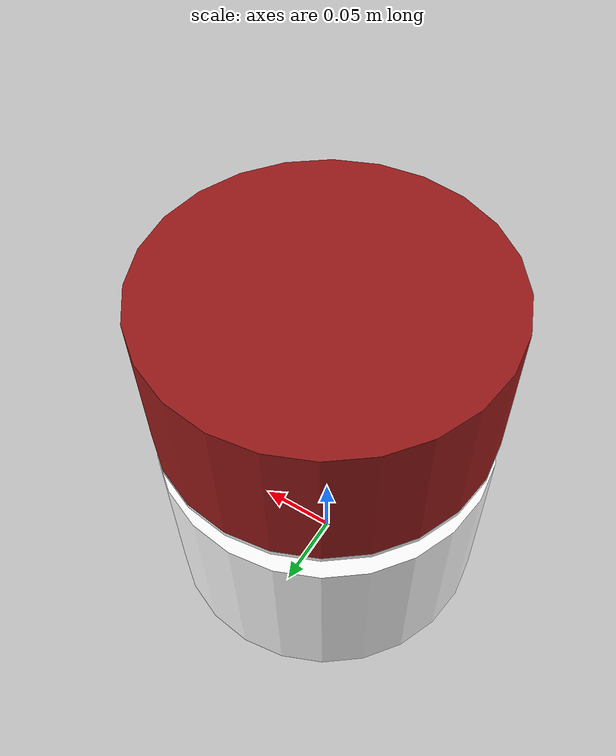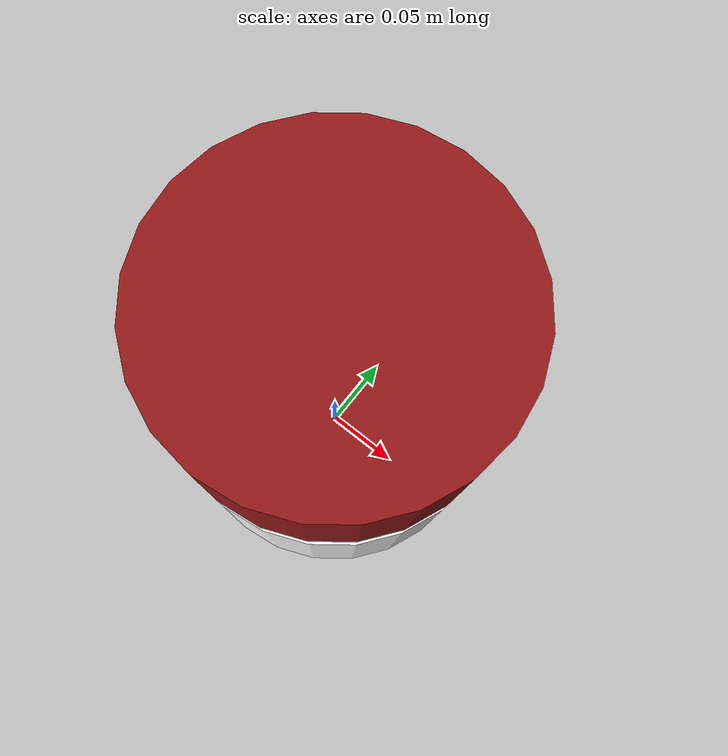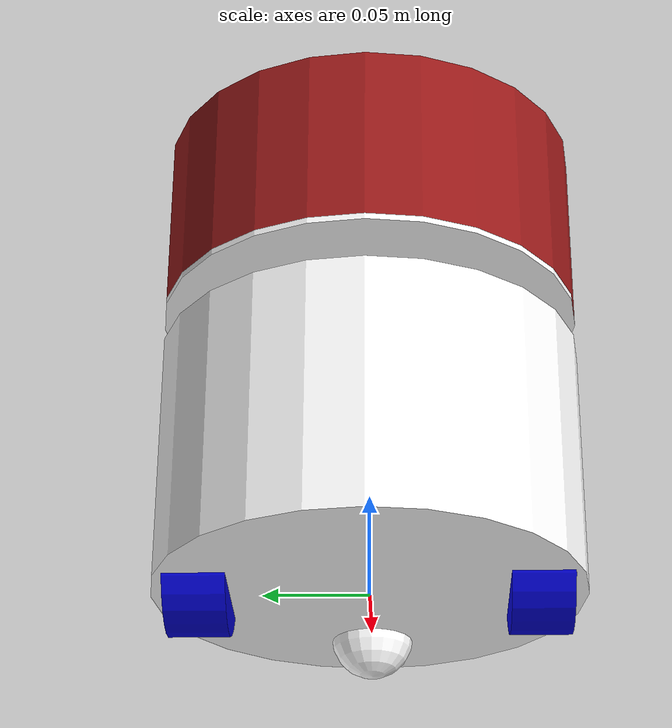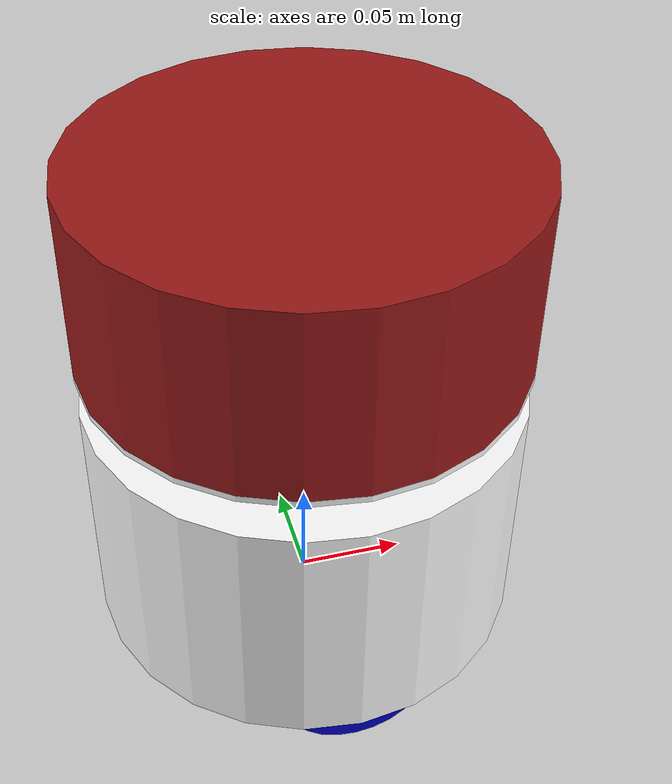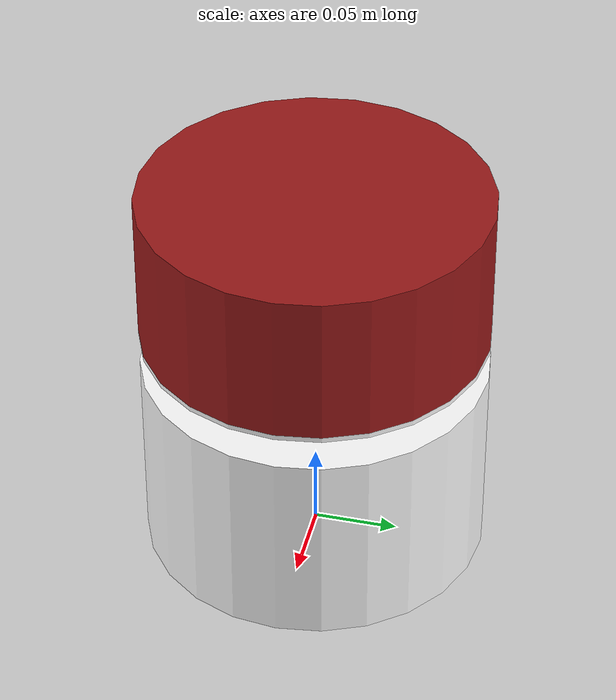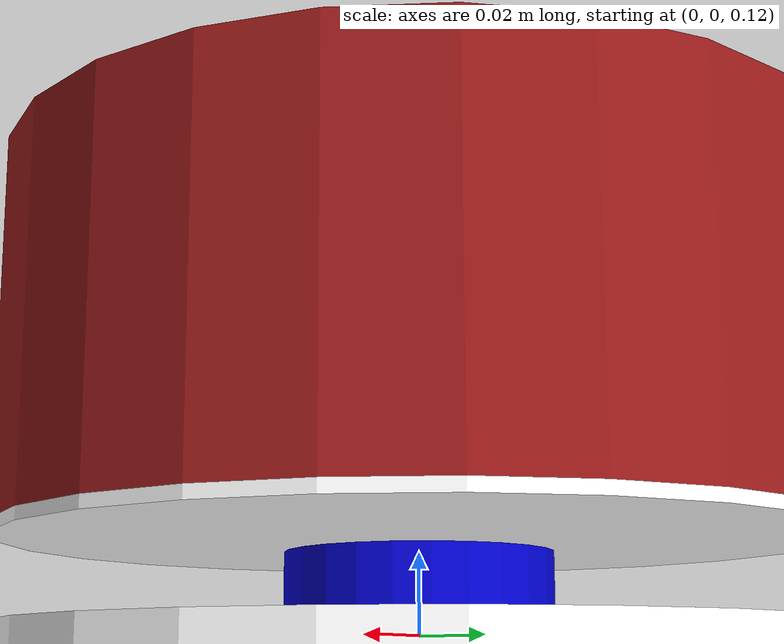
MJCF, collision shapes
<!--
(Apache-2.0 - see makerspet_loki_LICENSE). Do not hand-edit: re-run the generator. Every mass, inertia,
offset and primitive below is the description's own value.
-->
<mujoco model="makerspet_loki">
  <compiler angle="radian" meshdir="meshes" autolimits="true"/>

  <default>
    <default class="makerspet_loki">
      <default class="visual">
        <geom contype="0" conaffinity="0" group="2"/>
      </default>
      <default class="collision">
        <geom group="3" rgba="0.6 0.1 0.1 0.35"/>
      </default>
      <default class="wheel_collision">
        <geom type="cylinder" group="3" rgba="0.05 0.05 0.05 0.4" friction="1.0 0.005 0.0001"/>
      </default>
      <default class="caster_collision">
        <geom group="3" rgba="0.6 0.1 0.1 0.35" friction="0.05 0.005 0.0001" priority="2"/>
      </default>
      <default class="wheel">
        <joint axis="0 0 1" damping="0.001" armature="0.002"/>
      </default>
    </default>
  </default>

  <asset>
    <material name="makerspet_loki_black" rgba="0.0 0.0 0.0 1"/>
    <material name="makerspet_loki_blue" rgba="0.0 0.0 0.8 1"/>
    <material name="makerspet_loki_dark" rgba="0.3 0.3 0.3 1"/>
    <material name="makerspet_loki_grey" rgba="0.5 0.5 0.5 1"/>
    <material name="makerspet_loki_red" rgba="0.8 0.0 0.0 1"/>
    <material name="makerspet_loki_white" rgba="1.0 1.0 1.0 1"/>
    <mesh file="head.stl" scale="0.0002042 0.0002042 0.00018"/>
  </asset>

  <worldbody>
    <body name="base_link" childclass="makerspet_loki">
      <freejoint name="base_free"/>
      <inertial pos="0 0 0" mass="0.5" diaginertia="0.001930355 0.001930355 0.0026061024999999996"/>
      <!-- The scan plane, off the description's own scan_joint. -->
      <site name="lidar" pos="0 0 0.13135" size="0.005" rgba="1 0 0 0.6"/>
      <site name="base_imu" pos="0 0 0" size="0.005" rgba="0 0 0 0"/>
        <geom class="visual" type="cylinder" size="0.1021 0.06135" material="makerspet_loki_white" pos="0 0 0.06135"/>
        <geom class="collision" type="cylinder" size="0.1021 0.06135" name="base_link_collision0" pos="0 0 0.06135"/>
          <body name="caster_link" pos="0.0635 0 0.0020000000000000018">
            <inertial pos="0 0 0" mass="0.42" diaginertia="6.72e-05 6.72e-05 6.72e-05"/>
            <geom class="visual" type="sphere" size="0.02" material="makerspet_loki_white" pos="0 0 0"/>
            <geom class="caster_collision" type="sphere" size="0.02" name="caster_link_collision0" pos="0 0 0"/>
          </body>
          <body name="wheel_left_link" pos="0 0.0795315 0.015500000000000003" quat="0.7071068 -0.7071068 0 0">
            <inertial pos="0 0 0" mass="0.05" diaginertia="1.753229166666667e-05 1.753229166666667e-05 2.8056250000000008e-05"/>
            <joint name="wheel_left_joint" class="wheel"/>
            <geom class="visual" type="cylinder" size="0.0335 0.0145" material="makerspet_loki_blue" pos="0 0 0"/>
            <geom class="collision" type="cylinder" size="0.0335 0.0145" name="wheel_left_link_collision0" pos="0 0 0"/>
          </body>
          <body name="wheel_right_link" pos="0 -0.0795315 0.015500000000000003" quat="0.7071068 -0.7071068 0 0">
            <inertial pos="0 0 0" mass="0.05" diaginertia="1.753229166666667e-05 1.753229166666667e-05 2.8056250000000008e-05"/>
            <joint name="wheel_right_joint" class="wheel"/>
            <geom class="visual" type="cylinder" size="0.0335 0.0145" material="makerspet_loki_blue" pos="0 0 0"/>
            <geom class="collision" type="cylinder" size="0.0335 0.0145" name="wheel_right_link_collision0" pos="0 0 0"/>
          </body>
          <body name="base_scan" pos="0 0 0.13135" quat="6.123234e-17 -1 0 0">
            <inertial pos="0 0 0" mass="0.2" diaginertia="5.8780166666666684e-05 5.8780166666666684e-05 0.00010758400000000002"/>
            <geom class="visual" type="cylinder" size="0.0328 0.00865" material="makerspet_loki_blue" pos="0 0 0"/>
            <geom class="collision" type="cylinder" size="0.0328 0.00865" name="base_scan_collision0" pos="0 0 0"/>
          </body>
          <body name="base_upper_link" pos="0 0 0.1422">
            <inertial pos="0 0 0" mass="0.1" diaginertia="0.00026068525 0.00026068525 0.0005212205"/>
            <geom class="visual" type="cylinder" size="0.1021 0.0015" material="makerspet_loki_white" pos="0 0 0.0015"/>
            <geom class="collision" type="cylinder" size="0.1021 0.0015" name="base_upper_link_collision0" pos="0 0 0.0015"/>
            <body name="head_link" pos="0 0 0.003">
              <inertial pos="0 0 0" mass="0.2" diaginertia="0.00037048819999999994 0.00037048819999999994 0.0004169763999999999"/>
              <geom class="visual" type="mesh" mesh="head" material="makerspet_loki_red" pos="0 0 0"/>
              <geom class="collision" type="cylinder" size="0.1021 0.045" name="head_link_collision0" pos="0 0 0.045"/>
              <body name="tablet_link" pos="0.03209999999999999 0 0" quat="0.9848077 0 -0.1736483 0">
                <inertial pos="0 0 0" mass="0.2" diaginertia="0.00010301016666666668 0.0004656101666666666 0.0005659203333333333"/>
                <geom class="visual" type="box" size="0.08345 0.03905 0.0045" material="makerspet_loki_dark" pos="0 0 0.03905" quat="0.5 0.5 0.5 0.5"/>
                <geom class="collision" type="box" size="0.08345 0.03905 0.0045" name="tablet_link_collision0" pos="0 0 0.03905" quat="0.5 0.5 0.5 0.5"/>
                <body name="color_camera_link" pos="0.004399999999999999 -0.07544999999999999 0.03905">
                  <geom class="visual" type="cylinder" size="0.002 5e-05" material="makerspet_loki_white" pos="0 0 0" quat="0.7071068 0 0.7071068 0"/>
                </body>
                <body name="imu_link" pos="0 0 0.03905">
                  <geom class="visual" type="box" size="0.0005 0.001 0.002" material="makerspet_loki_black" pos="0 0 0"/>
                </body>
              </body>
            </body>
          </body>
    </body>
  </worldbody>

  <actuator>
    <velocity name="wheel_left_motor" joint="wheel_left_joint" kv="1.0" ctrlrange="-16 16" forcerange="-0.49 0.49"/>
    <velocity name="wheel_right_motor" joint="wheel_right_joint" kv="1.0" ctrlrange="-16 16" forcerange="-0.49 0.49"/>
  </actuator>

  <keyframe>
    <key name="home" qpos="0 0 0.018 1 0 0 0  0 0"/>
  </keyframe>
</mujoco>
